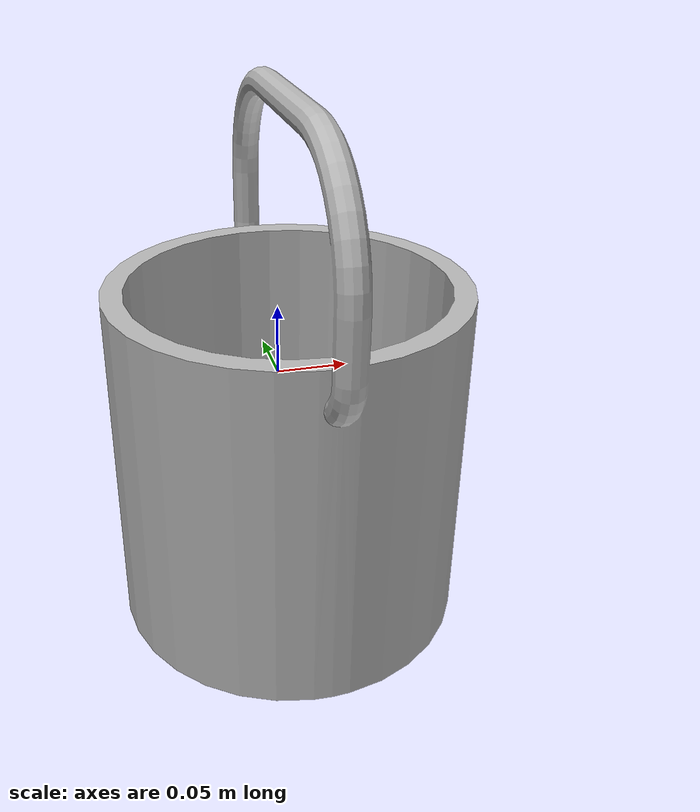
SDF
<?xml version="1.0" ?>
<sdf version="1.5">
  <model name="seau">
    <link name="link">
      <pose>0 0 0 1.5708 0 0 </pose>
      <inertial>
        <mass>2</mass>
        <inertia>
				  <ixx>0.1</ixx>
				  <ixy>0</ixy>
				  <ixz>0</ixz>
				  <iyy>0.1</iyy>
					<izz>0.1</izz>
        </inertia>
      </inertial>
      <visual name="visual">
        <geometry>
 	  			<mesh>
            <uri>model://Seau/meshes/seau.stl</uri>
				  </mesh>
        </geometry>
      </visual>
      <collision name="collision">
        <geometry>
 	  			<mesh>
            <uri>model://Seau/meshes/seau.stl</uri>
				  </mesh>
        </geometry>
      </collision>
    </link>
  </model>
</sdf>
